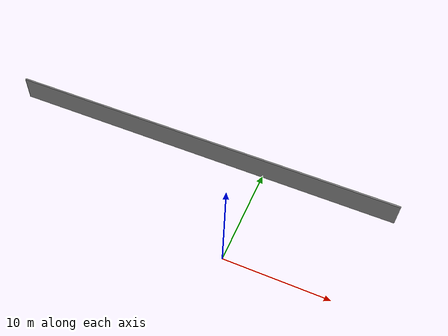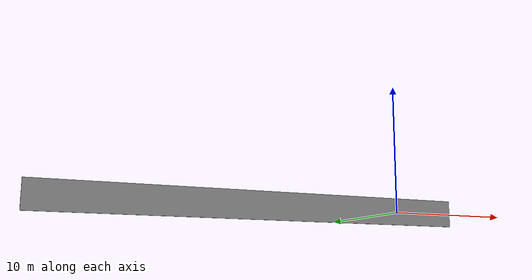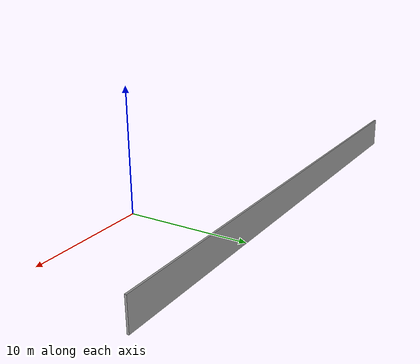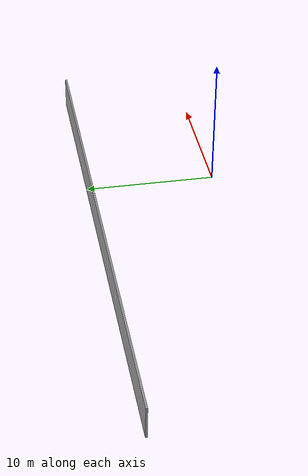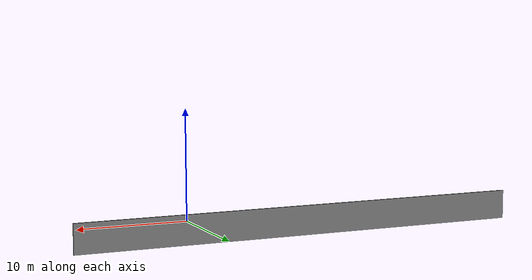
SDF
<?xml version='1.0'?>
<sdf version='1.7'>
  <model name='extra_wall'>
    <pose>-6.79323 5.03717 0 0 -0 0</pose>
    <link name='Wall_5'>
      <collision name='Wall_5_Collision'>
        <geometry>
          <box>
            <size>39.5 0.15 2.5</size>
          </box>
        </geometry>
        <pose>0 0 1.25 0 -0 0</pose>
      </collision>
      <visual name='Wall_5_Visual'>
        <pose>0 0 1.25 0 -0 0</pose>
        <geometry>
          <box>
            <size>39.5 0.15 2.5</size>
          </box>
        </geometry>
        <material>
          <script>
            <uri>file://media/materials/scripts/gazebo.material</uri>
            <name>Gazebo/Grey</name>
          </script>
          <ambient>1 1 1 1</ambient>
        </material>
        <meta>
          <layer>0</layer>
        </meta>
      </visual>
      <pose>0 4.96217 0 0 -0 0</pose>
    </link>
    <static>1</static>
  </model>
</sdf>
